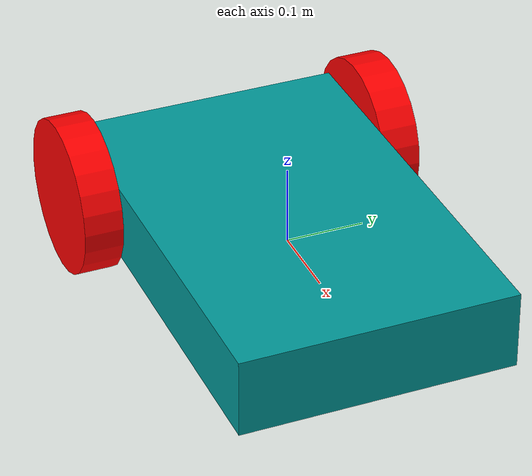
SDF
<sdf version='1.9'>
    <model name='simple_ddr' canonical_link='base_link'>

        <plugin filename="gz-sim-diff-drive-system" name="gz::sim::systems::DiffDrive">
            <left_joint>joint_wheelL</left_joint>
            <right_joint>joint_wheelR</right_joint>
            <wheel_separation>0.4</wheel_separation>
            <wheel_radius>0.1</wheel_radius>
            <odom_publish_frequency>0.1</odom_publish_frequency>
        </plugin>

		<plugin
			filename="gz-sim-sensors-system"
			name="gz::sim::systems::Sensors">
			<render_engine>ogre2</render_engine>
		</plugin>

        <link name='base_link'>
          <pose>0 0 0 0 0 0</pose>

            <inertial>
                <mass>1.0</mass>
                <inertia>
                    <ixx>0.011041666666666665</ixx>
                    <ixy>0.0</ixy>
                    <ixz>0.0</ixz>
                    <iyy>0.02604166666666667</iyy>
                    <iyz>0.0</iyz>
                    <izz>0.03541666666666667</izz>
                </inertia>
            </inertial>

            <collision name='base_link'>
              <pose>0 0 0 0 0 0</pose>
              <geometry>
                <box>
                  <size>0.55 0.35 0.1</size>
                </box>
              </geometry>
            </collision>

            <visual name='base_link'>
              <pose>0 0 0 0 0 0</pose>
              <geometry>
                <box>
                  <size>0.55 0.35 0.1</size>
                </box>
              </geometry>

              <material>
                  <ambient>0.0 0.6 0.6 1</ambient>
                  <diffuse>0.0 0.6 0.6 1</diffuse>
                  <specular>0.0 0.6 0.6 1</specular>
              </material>
            </visual>

			<sensor name="imu_sensor" type="imu">
				<always_on>1</always_on>
				<update_rate>1</update_rate>
				<visualize>true</visualize>
				<topic>imu</topic>
			</sensor>

			<sensor name='gpu_lidar' type='gpu_lidar'>"
				<pose relative_to='lidar_frame'>0 0 0 0 0 0</pose>
				<topic>lidar</topic>
				<update_rate>10</update_rate>
				<lidar>
					<scan>
						<horizontal>
							<samples>640</samples>
							<resolution>0.01</resolution>
							<min_angle>-1.396263</min_angle>
							<max_angle>1.396263</max_angle>
						</horizontal>
						<vertical>
							<samples>1</samples>
							<resolution>0.01</resolution>
							<min_angle>0</min_angle>
							<max_angle>0</max_angle>
						</vertical>
					</scan>
					<range>
						<min>0.08</min>
						<max>10.0</max>
						<resolution>0.01</resolution>
					</range>
				</lidar>
				<always_on>1</always_on>
				<visualize>1</visualize>
			</sensor>
        </link>

		<joint name='joint_wheelL' type='revolute'>
			<pose relative_to='base_link'>-0.2 -0.2 0.0 0 0 0</pose>
			<parent>base_link</parent>
			<child>wheelL</child>
			<axis>
			<xyz>0 1 0</xyz>
			<limit>
				<lower>-inf</lower>
				<upper>inf</upper>
			</limit>
			<dynamics>
				<damping>10</damping>
				<friction>1</friction>
				<spring_reference>0</spring_reference>
				<spring_stiffness>0</spring_stiffness>
			</dynamics>
			</axis>
		</joint>

		<link name='wheelL'>
			<pose relative_to='joint_wheelL'>0 0 0 0 0 0</pose>
			<inertial>
			<pose>0 0 0 0 0 0</pose>
			<mass>0.050000000000000003</mass>
			<inertia>
				<ixx>0.001625000000000001</ixx>
				<ixy>0</ixy>
				<ixz>0</ixz>
				<iyy>0.00025000000000000011</iyy>
				<iyz>0</iyz>
				<izz>0.001625000000000001</izz>
			</inertia>
			</inertial>
			<collision name='wheelL_collision'>
			<pose>0 0 0 -1.5707963300000001 0 0</pose>
			<geometry>
				<cylinder>
				<length>0.050000000000000003</length>
				<radius>0.10000000000000001</radius>
				</cylinder>
			</geometry>
			</collision>
			<visual name='wheelL_visual'>
			<pose>0 0 0 -1.5707963300000001 0 0</pose>
			<geometry>
				<cylinder>
				<length>0.050000000000000003</length>
				<radius>0.10000000000000001</radius>
				</cylinder>
			</geometry>

				<material>
					<ambient>1.0 0.0 0.0 1</ambient>
					<diffuse>1.0 0.0 0.0 1</diffuse>
					<specular>1.0 0.0 0.0 1</specular>
				</material>
			</visual>
		</link>

		<joint name='joint_wheelR' type='revolute'>
			<pose relative_to='base_link'>-0.2 0.2 0.0 0 0 0</pose>
			<parent>base_link</parent>
			<child>wheelR</child>
			<axis>
			<xyz>0 1 0</xyz>
			<limit>
				<lower>-inf</lower>
				<upper>inf</upper>
			</limit>
			<dynamics>
				<damping>10</damping>
				<friction>1</friction>
				<spring_reference>0</spring_reference>
				<spring_stiffness>0</spring_stiffness>
			</dynamics>
			</axis>
		</joint>

		<link name='wheelR'>
			<pose relative_to='joint_wheelR'>0 0 0 0 0 0</pose>
			<inertial>
			<pose>0 0 0 0 0 0</pose>
			<mass>0.050000000000000003</mass>
			<inertia>
				<ixx>0.001625000000000001</ixx>
				<ixy>0</ixy>
				<ixz>0</ixz>
				<iyy>0.00025000000000000011</iyy>
				<iyz>0</iyz>
				<izz>0.001625000000000001</izz>
			</inertia>
			</inertial>
			<collision name='wheelR_collision'>
			<pose>0 0 0 -1.5707963300000001 0 0</pose>
			<geometry>
				<cylinder>
				<length>0.050000000000000003</length>
				<radius>0.10000000000000001</radius>
				</cylinder>
			</geometry>
			</collision>
			<visual name='wheelR_visual'>
			<pose>0 0 0 -1.5707963300000001 0 0</pose>
			<geometry>
				<cylinder>
				<length>0.050000000000000003</length>
				<radius>0.10000000000000001</radius>
				</cylinder>
			</geometry>
				<material>
					<ambient>1.0 0.0 0.0 1</ambient>
					<diffuse>1.0 0.0 0.0 1</diffuse>
					<specular>1.0 0.0 0.0 1</specular>
				</material>
			</visual>
		</link>

		<link name='caster'>
			<pose relative_to='joint_caster'>0 0 0.0 0 0 0</pose>
			<inertial>
				<pose>0 0 0 0 0 0</pose>
				<mass>0.005</mass>
				<inertia>
					<ixx>0.001625000000000001</ixx>
					<ixy>0</ixy>
					<ixz>0</ixz>
					<iyy>0.00025000000000000011</iyy>
					<iyz>0</iyz>
					<izz>0.001625000000000001</izz>
				</inertia>
			</inertial>
			<collision name='caster_collision'>
				<geometry>
					<sphere>
						<radius>0.025</radius>
					</sphere>
				</geometry>
				<surface>
					<friction>
						<ode>
							<mu> 0.0 </mu>
							<mu2> 0.0 </mu2>
						</ode>
					</friction>
				</surface>
			</collision>
			<visual name='caster_visual'>
				<geometry>
					<sphere>
						<radius>0.025</radius>
					</sphere>
				</geometry>
			</visual>
		</link>

		<joint name='joint_caster' type='fixed'>
			<pose relative_to='base_link'>0.2 0 -0.075 0 0 0</pose>
			<parent>base_link</parent>
			<child>caster</child>
		</joint>

		<frame name='joint_body' attached_to='base_link'>
			<pose>0 0 0 0 0 0</pose>
		</frame>

		<frame name="lidar_frame" attached_to='base_link'>
			<pose>0.1 0 0.3 0 0 0</pose>
		</frame>

    </model>
</sdf>
